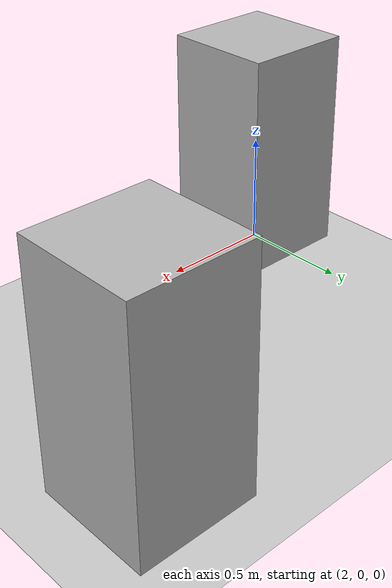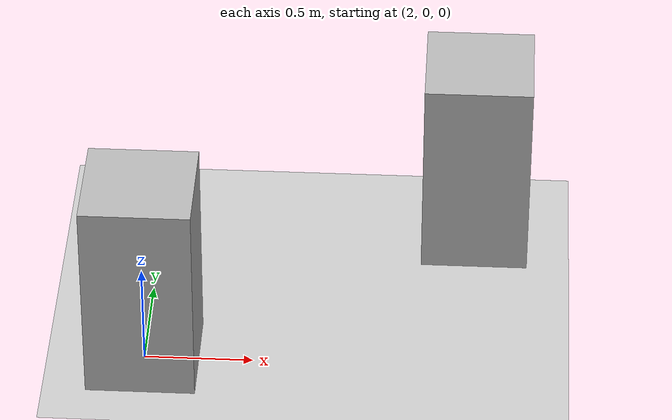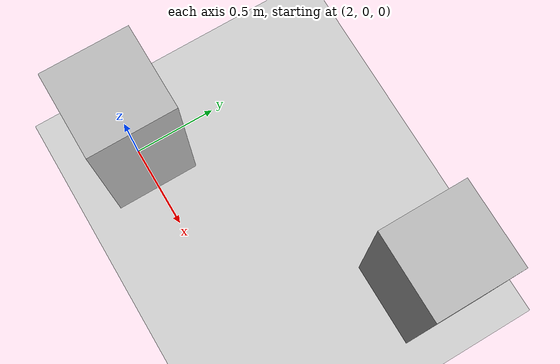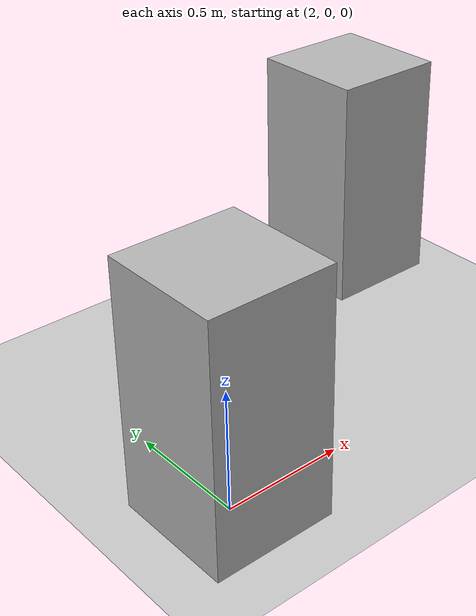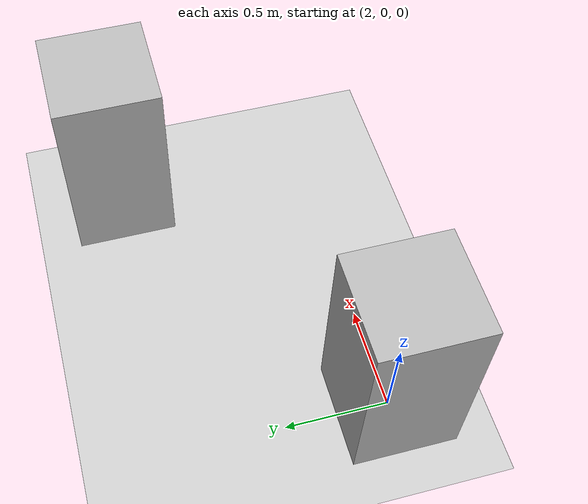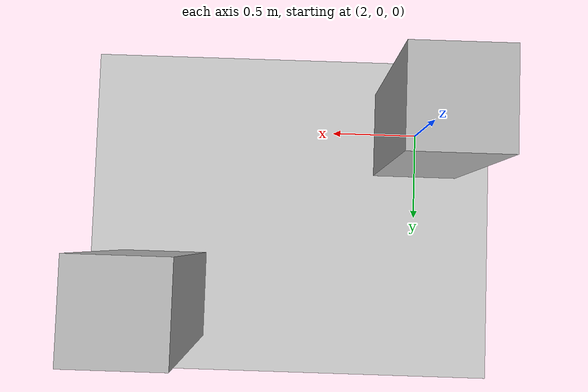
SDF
<?xml version="1.0"?>
<sdf version="1.8">
    <world name="vfh_world">

        <!-- Physics information -->
        <physics name="default_physics" type="ignored">
            <max_step_size>0.001</max_step_size>
            <real_time_factor>1.0</real_time_factor>
        </physics>

        <plugin filename="gz-sim-physics-system" name="gz::sim::systems::Physics"/>

        <!-- Allows ROS/Gazebo to insert the robot -->
        <plugin filename="gz-sim-user-commands-system" name="gz::sim::systems::UserCommands"/>

        <!-- Publishes the simulation scene -->
        <plugin filename="gz-sim-scene-broadcaster-system" name="gz::sim::systems::SceneBroadcaster"/>

        <!-- Required for the simulated LiDAR -->
        <plugin filename="gz-sim-sensors-system" name="gz::sim::systems::Sensors">
            <render_engine>ogre2</render_engine>
        </plugin>

        <!--define gravity -->
        <gravity>0 0 -9.81</gravity>

        <!-- Ground plane -->
        <model name="ground_plane">
            <static>true</static>

            <link name="ground">
                <visual name="visual">
                    <geometry>
                        <plane>
                            <normal>0 0 1</normal>
                            <size>30 30</size>
                        </plane>
                    </geometry>
                </visual>
                <collision name="collision">
                    <geometry>
                        <plane>
                            <normal>0 0 1</normal>
                            <size>30 30</size>
                        </plane>
                    </geometry>
                    <surface>
                        <friction>
                            <ode>
                                <mu>1.0</mu>
                                <mu2>1.0</mu2>
                            </ode>
                        </friction>
                    </surface>
                </collision>
            </link>
        </model>

        <!-- An obstacle 2 meters in front of the robot -->
        <model name="obstacle_1">
            <static>true</static>

            <pose>2 0 0.5 0 0 0</pose> <!-- pose tag: x y z roll pitch yaw -->

            <link name="body">
                <visual name="visual">
                    <geometry>
                        <box>
                            <size>0.5 0.5 1.0</size>
                        </box>
                    </geometry>
                </visual>

                <collision name="collision">
                    <geometry>
                        <box>
                            <size>0.5 0.5 1.0</size>
                        </box>
                    </geometry>
                </collision>
            </link>
        </model>

        <!-- A second obstacle offset from the robot -->
        <model name="obstacle_2">
            <static>true</static>

            <pose>3.5 1.0 0.5 0 0 0</pose>

            <link name="body">
                <visual name="visual">
                    <geometry>
                        <box>
                            <size>0.5 0.5 1.0</size>
                        </box>
                    </geometry>
                </visual>

                <collision name="collision">
                    <geometry>
                        <box>
                            <size>0.5 0.5 1.0</size>
                        </box>
                    </geometry>
                </collision>
            </link>
        </model>

    </world>

</sdf>
